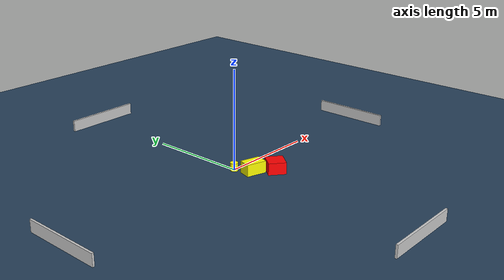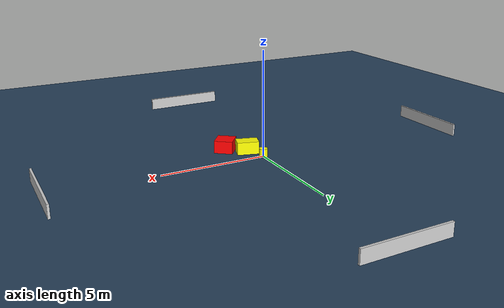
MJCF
<?xml version="1.0" ?>
<mujoco model="generated_environment">
  <option timestep="0.01" integrator="RK4" cone="elliptic"/>
  <default>
    <geom density="1"/>
  </default>
  <asset>
    <texture builtin="gradient" height="3072" name="skybox" rgb1="0.3 0.5 0.7" rgb2="0 0 0" type="skybox" width="512"/>
    <texture builtin="checker" height="300" name="groundplane" rgb1="0.2 0.3 0.4" rgb2="0.1 0.2 0.3" type="2d" width="300"/>
    <material name="groundplane" reflectance="0.2" texrepeat="5 5" texture="groundplane"/>
  </asset>
  <worldbody>
    <light dir="0 0 -1" directional="true" pos="0 0 1.5"/>
    <geom condim="3" friction="0.5 0.005 0.001" material="groundplane" name="floor" pos="0 0 0" size="0 0 0.05" type="plane"/>
    <body name="walls">
      <geom name="wall_1" condim="4" pos="-10.0 0.0 0.3" rgba="0.800000011920929 0.800000011920929 0.800000011920929 1.0" size="0.05 2.0 0.3" type="box"/>
      <geom name="wall_2" condim="4" pos="10.0 0.0 0.3" rgba="0.800000011920929 0.800000011920929 0.800000011920929 1.0" size="0.05 2.0 0.3" type="box"/>
      <geom name="wall_3" condim="4" pos="0.0 -10.0 0.3" rgba="0.800000011920929 0.800000011920929 0.800000011920929 1.0" size="2.0 0.05 0.3" type="box"/>
      <geom name="wall_4" condim="4" pos="0.0 10.0 0.3" rgba="0.800000011920929 0.800000011920929 0.800000011920929 1.0" size="2.0 0.05 0.3" type="box"/>
    </body>
    <body name="robot">
      <joint name="joint_x" type="slide" pos="0 0 0" axis="1 0 0"/>
      <joint name="joint_y" type="slide" pos="0 0 0" axis="0 1 0"/>
      <geom name="robot" type="cylinder" pos="0.0 0.0 0.2" size="0.2 0.2 0.0" mass="5.0" friction="1.0 0.005 0.0001" condim="4" rgba="1.0 1.0 0.0 1.0"/>
    </body>
    <body name="obstacle_1_movable">
      <geom name="obstacle_1_movable" condim="4" pos="0.40887480216167116 -0.8525509872191498 0.3" euler="0 0 253.45658921608734" friction="0.0 0.005 0.001" rgba="1.0 1.0 0.0 1.0" size="0.31967548779823785 0.518275844889025 0.3" type="box" mass="0.1"/>
      <joint type="free"/>
    </body>
    <body name="obstacle_2_static">
      <geom name="obstacle_2_static" condim="4" pos="1.229110691166005 -1.5555596417771327 0.3" euler="0 0 321.5375178748383" friction="0.0 0.005 0.001" rgba="1.0 0.0 0.0 1.0" size="0.44028195277739957 0.43970312306901205 0.3" type="box"/>
    </body>
  </worldbody>
  <actuator>
    <motor name="actuator_x" joint="joint_x" gear="1" ctrlrange="-1 1"/>
    <motor name="actuator_y" joint="joint_y" gear="1" ctrlrange="-1 1"/>
  </actuator>
</mujoco>
